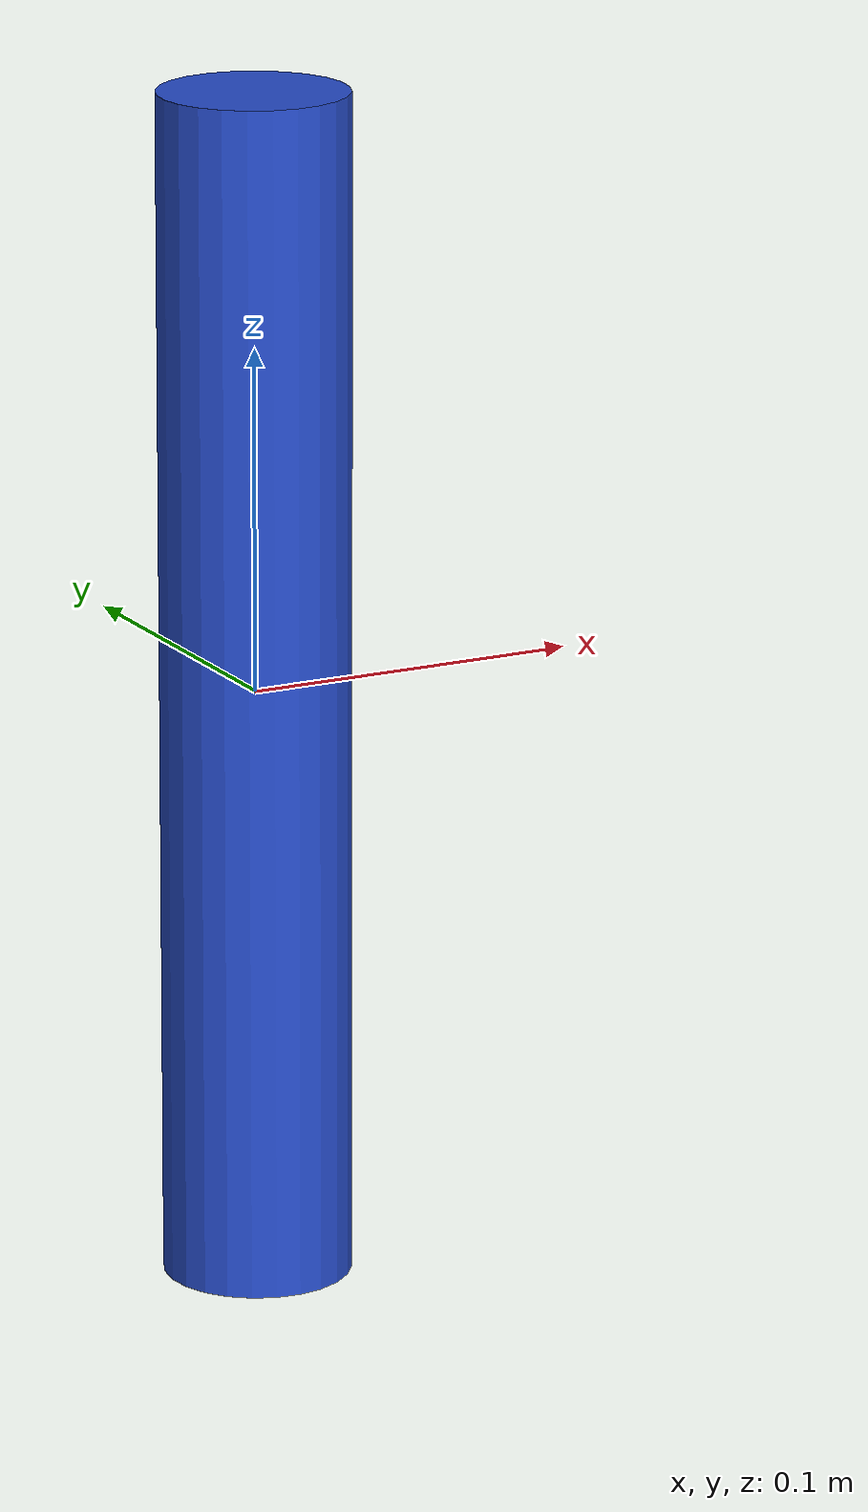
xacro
<?xml version="1.0" ?>
<robot xmlns:xacro="http://ros.org/wiki/xacro">

    <property name="prefix" value="" />

	<link name="${prefix}object_link">
            <visual>
                <!--origin xyz="0.3 -0.3 0.555" rpy="0 0 0"/-->
                <origin xyz="0 0 0" rpy="0 0 0"/>
                <geometry name="${prefix}object_link_visual_geom">
                    <cylinder length="0.348" radius="0.0275"/>
                </geometry>
            </visual>
            <collision>
                <!--origin xyz="0.3 -0.3 0.555" rpy="0 0 0"/-->
                <origin xyz="0 0 0" rpy="0 0 0"/>
                <geometry name="${prefix}object_link_coll_geom">
                    <cylinder length="0.348" radius="0.0275"/>
                </geometry>
            </collision>
    	    <inertial>
    		<mass value="0.1" />:
    		<inertia ixx="0.01" iyy="0.01" izz="0.01" ixy="0" ixz="0" iyz="0" />
    	    </inertial>
        </link>

    	<gazebo reference="${prefix}object_link">
	   <static>true</static>
	   <material>Gazebo/Blue</material>
	   <selfCollide>true</selfCollide>
   	   <turnGravityOff>false</turnGravityOff>
           <!-- kp and kd for rubber -->
           <kp>1000000.0</kp>
           <kd>1000.0</kd>
           <mu1>1.5</mu1>
           <mu2>1.5</mu2>
           <fdir1>1 0 0</fdir1>
           <maxVel>1.0</maxVel>
           <minDepth>0.00</minDepth>
  	</gazebo>

</robot>
